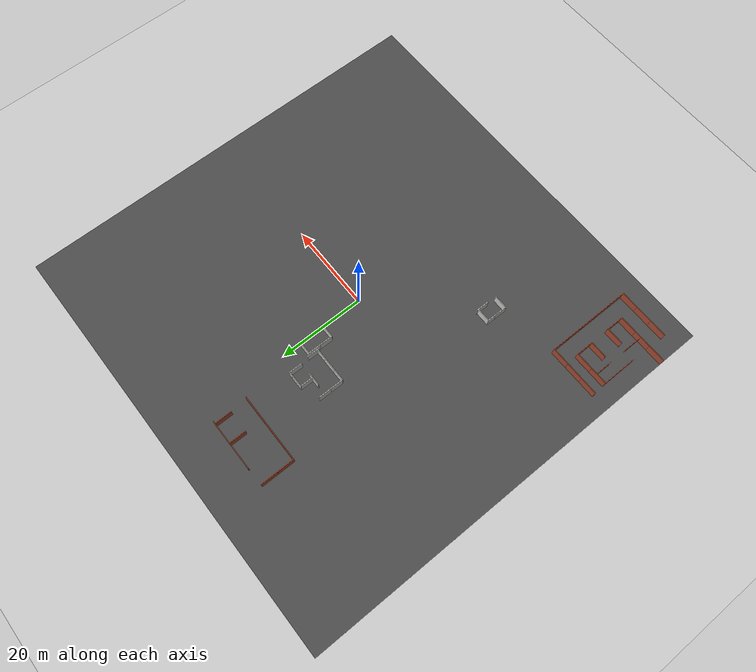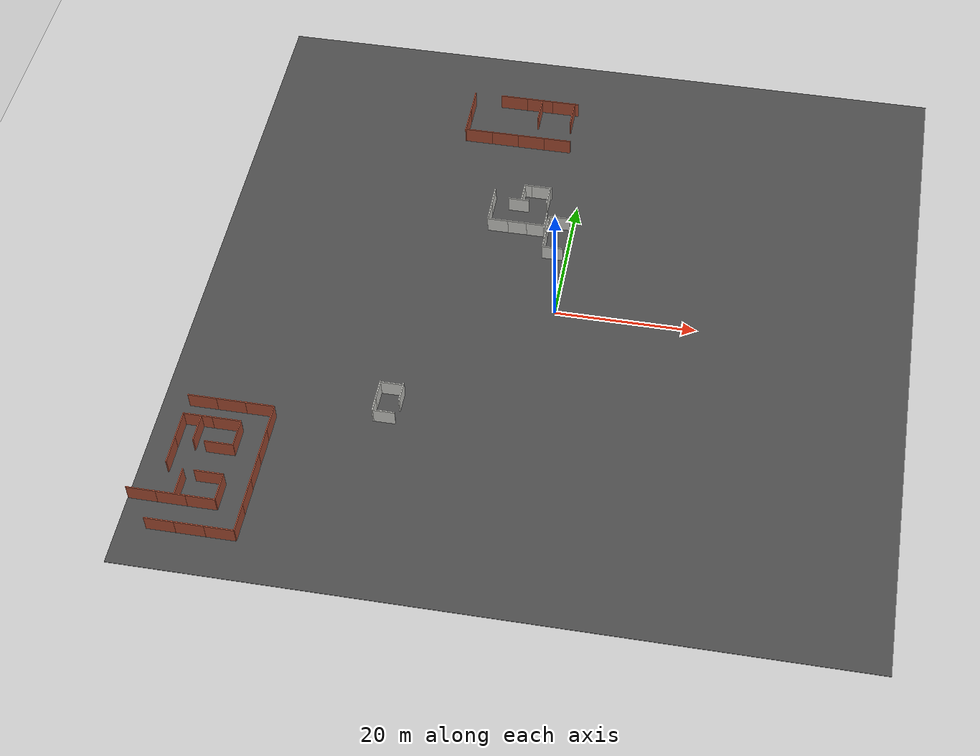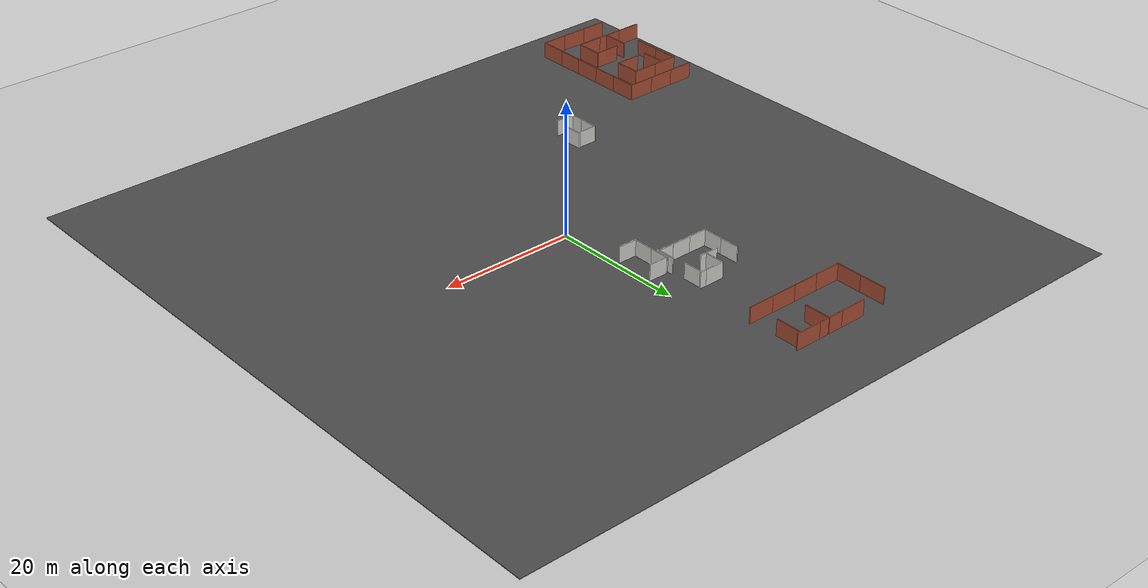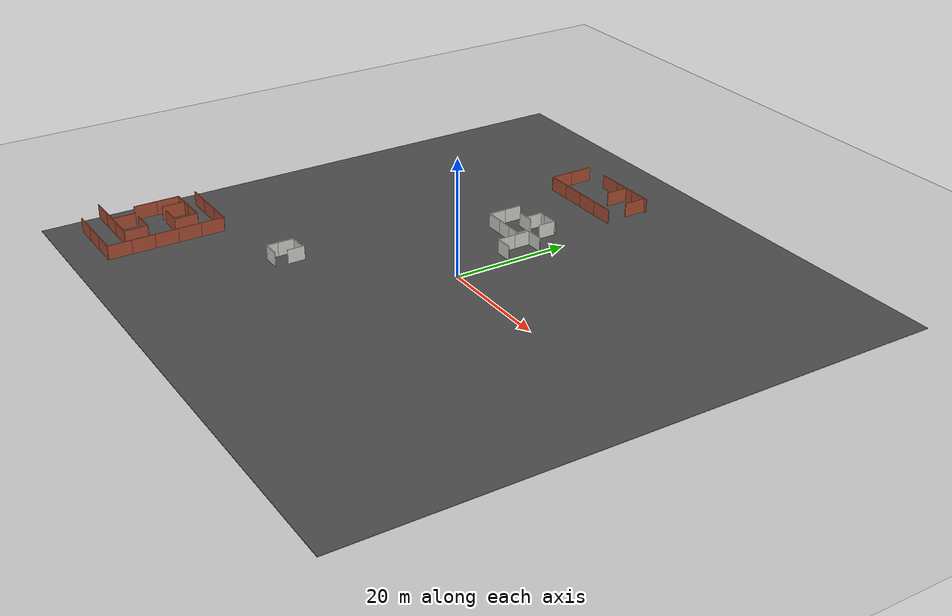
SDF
<sdf version="1.6">
 <world name="default">
  <model name="ground_plane">
   <static>1</static>
   <link name="link">
    <collision name="collision">
     <geometry><plane><normal>0 0 1</normal><size>100 100</size></plane></geometry>
     <surface><friction><ode><mu>100</mu><mu2>50</mu2></ode></friction></surface>
    </collision>
    <visual name="visual">
     <cast_shadows>0</cast_shadows>
     <geometry><plane><normal>0 0 1</normal><size>100 100</size></plane></geometry>
     <material>
      <script><uri>file://media/materials/scripts/gazebo.material</uri><name>Gazebo/Grey</name></script>
     </material>
    </visual>
   </link>
  </model>
  <model name="asphalt_plane">
   <static>1</static>
   <link name="link">
    <collision name="collision"><geometry><box><size>100 100 0.1</size></box></geometry></collision>
    <visual name="visual">
     <cast_shadows>0</cast_shadows>
     <geometry><box><size>100 100 0.1</size></box></geometry>
     <material>
      <script>
       <uri>model://asphalt_plane/materials/scripts</uri>
       <uri>model://asphalt_plane/materials/textures</uri>
       <name>vrc/asphalt</name>
      </script>
     </material>
    </visual>
   </link>
  </model>
  <model name="concrete_wall">
   <pose>-3.44413 14.4314 0 0 -0 0</pose>
   <link name="Wall_0">
    <collision name="Wall_0_Collision">
     <geometry><box><size>3 0.15 2.5</size></box></geometry>
     <pose>0 0 1.25 0 -0 0</pose>
    </collision>
    <visual name="Wall_0_Visual">
     <pose>0 0 1.25 0 -0 0</pose>
     <geometry><box><size>3 0.15 2.5</size></box></geometry>
     <material>
      <script><uri>file://media/materials/scripts/gazebo.material</uri><name>Gazebo/CeilingTiled</name></script>
      <ambient>1 1 1 1</ambient>
     </material>
     <meta><layer>0</layer></meta>
    </visual>
    <pose>0 0 0 0 -0 1.5708</pose>
   </link>
   <static>1</static>
  </model>
  <model name="concrete_wall_0">
   <pose>-3.44364 11.4407 0 0 -0 0</pose>
   <link name="Wall_0">
    <collision name="Wall_0_Collision">
     <geometry><box><size>3 0.15 2.5</size></box></geometry>
     <pose>0 0 1.25 0 -0 0</pose>
    </collision>
    <visual name="Wall_0_Visual">
     <pose>0 0 1.25 0 -0 0</pose>
     <geometry><box><size>3 0.15 2.5</size></box></geometry>
     <material>
      <script><uri>file://media/materials/scripts/gazebo.material</uri><name>Gazebo/CeilingTiled</name></script>
      <ambient>1 1 1 1</ambient>
     </material>
     <meta><layer>0</layer></meta>
    </visual>
    <pose>0 0 0 0 -0 1.5708</pose>
   </link>
   <static>1</static>
  </model>
  <model name="concrete_wall_3">
   <pose>-21.066 -21.2152 0 0 -0 0</pose>
   <link name="Wall_0">
    <collision name="Wall_0_Collision">
     <geometry><box><size>3 0.15 2.5</size></box></geometry>
     <pose>0 0 1.25 0 -0 0</pose>
    </collision>
    <visual name="Wall_0_Visual">
     <pose>0 0 1.25 0 -0 0</pose>
     <geometry><box><size>3 0.15 2.5</size></box></geometry>
     <material>
      <script><uri>file://media/materials/scripts/gazebo.material</uri><name>Gazebo/CeilingTiled</name></script>
      <ambient>1 1 1 1</ambient>
     </material>
     <meta><layer>0</layer></meta>
    </visual>
    <pose>0 0 0 0 -0 1.5708</pose>
   </link>
   <static>1</static>
  </model>
  <model name="concrete_wall_4">
   <pose>-21.0568 -19.2132 0 0 -0 0</pose>
   <link name="Wall_0">
    <collision name="Wall_0_Collision">
     <geometry><box><size>3 0.15 2.5</size></box></geometry>
     <pose>0 0 1.25 0 -0 0</pose>
    </collision>
    <visual name="Wall_0_Visual">
     <pose>0 0 1.25 0 -0 0</pose>
     <geometry><box><size>3 0.15 2.5</size></box></geometry>
     <material>
      <script><uri>file://media/materials/scripts/gazebo.material</uri><name>Gazebo/CeilingTiled</name></script>
      <ambient>1 1 1 1</ambient>
     </material>
     <meta><layer>0</layer></meta>
    </visual>
    <pose>0 0 0 0 -0 1.5708</pose>
   </link>
   <static>1</static>
  </model>
  <model name="concrete_wall_5">
   <pose>-17.8818 -19.0275 0 0 -0 0</pose>
   <link name="Wall_0">
    <collision name="Wall_0_Collision">
     <geometry><box><size>3 0.15 2.5</size></box></geometry>
     <pose>0 0 1.25 0 -0 0</pose>
    </collision>
    <visual name="Wall_0_Visual">
     <pose>0 0 1.25 0 -0 0</pose>
     <geometry><box><size>3 0.15 2.5</size></box></geometry>
     <material>
      <script><uri>file://media/materials/scripts/gazebo.material</uri><name>Gazebo/CeilingTiled</name></script>
      <ambient>1 1 1 1</ambient>
     </material>
     <meta><layer>0</layer></meta>
    </visual>
    <pose>0 0 0 0 -0 1.5708</pose>
   </link>
   <static>1</static>
  </model>
  <model name="concrete_wall_6_clone">
   <pose>-19.5085 -22.6271 0 0 -0 1.57079</pose>
   <link name="Wall_0">
    <collision name="Wall_0_Collision">
     <geometry><box><size>3 0.15 2.5</size></box></geometry>
     <pose>0 0 1.25 0 -0 0</pose>
    </collision>
    <visual name="Wall_0_Visual">
     <pose>0 0 1.25 0 -0 0</pose>
     <geometry><box><size>3 0.15 2.5</size></box></geometry>
     <material>
      <script><uri>file://media/materials/scripts/gazebo.material</uri><name>Gazebo/CeilingTiled</name></script>
      <ambient>1 1 1 1</ambient>
     </material>
     <meta><layer>0</layer></meta>
    </visual>
    <pose>0 0 0 0 -0 1.5708</pose>
   </link>
   <static>1</static>
  </model>
  <model name="concrete_wall_6_clone_0">
   <pose>-19.4814 -17.8466 0 0 -0 1.57079</pose>
   <link name="Wall_0">
    <collision name="Wall_0_Collision">
     <geometry><box><size>3 0.15 2.5</size></box></geometry>
     <pose>0 0 1.25 0 -0 0</pose>
    </collision>
    <visual name="Wall_0_Visual">
     <pose>0 0 1.25 0 -0 0</pose>
     <geometry><box><size>3 0.15 2.5</size></box></geometry>
     <material>
      <script><uri>file://media/materials/scripts/gazebo.material</uri><name>Gazebo/CeilingTiled</name></script>
      <ambient>1 1 1 1</ambient>
     </material>
     <meta><layer>0</layer></meta>
    </visual>
    <pose>0 0 0 0 -0 1.5708</pose>
   </link>
   <static>1</static>
  </model>
  <model name="concrete_wall_6_clone_6">
   <pose>-1.99874 9.88847 0 0 -0 1.57079</pose>
   <link name="Wall_0">
    <collision name="Wall_0_Collision">
     <geometry><box><size>3 0.15 2.5</size></box></geometry>
     <pose>0 0 1.25 0 -0 0</pose>
    </collision>
    <visual name="Wall_0_Visual">
     <pose>0 0 1.25 0 -0 0</pose>
     <geometry><box><size>3 0.15 2.5</size></box></geometry>
     <material>
      <script><uri>file://media/materials/scripts/gazebo.material</uri><name>Gazebo/CeilingTiled</name></script>
      <ambient>1 1 1 1</ambient>
     </material>
     <meta><layer>0</layer></meta>
    </visual>
    <pose>0 0 0 0 -0 1.5708</pose>
   </link>
   <static>1</static>
  </model>
  <model name="concrete_wall_6_clone_7">
   <pose>-1.94158 15.788 0 0 -0 1.57079</pose>
   <link name="Wall_0">
    <collision name="Wall_0_Collision">
     <geometry><box><size>3 0.15 2.5</size></box></geometry>
     <pose>0 0 1.25 0 -0 0</pose>
    </collision>
    <visual name="Wall_0_Visual">
     <pose>0 0 1.25 0 -0 0</pose>
     <geometry><box><size>3 0.15 2.5</size></box></geometry>
     <material>
      <script><uri>file://media/materials/scripts/gazebo.material</uri><name>Gazebo/CeilingTiled</name></script>
      <ambient>1 1 1 1</ambient>
     </material>
     <meta><layer>0</layer></meta>
    </visual>
    <pose>0 0 0 0 -0 1.5708</pose>
   </link>
   <static>1</static>
  </model>
  <model name="concrete_wall_6_clone_9">
   <pose>-10.7665 13.9394 0 0 -0 1.57079</pose>
   <link name="Wall_0">
    <collision name="Wall_0_Collision">
     <geometry><box><size>3 0.15 2.5</size></box></geometry>
     <pose>0 0 1.25 0 -0 0</pose>
    </collision>
    <visual name="Wall_0_Visual">
     <pose>0 0 1.25 0 -0 0</pose>
     <geometry><box><size>3 0.15 2.5</size></box></geometry>
     <material>
      <script><uri>file://media/materials/scripts/gazebo.material</uri><name>Gazebo/CeilingTiled</name></script>
      <ambient>1 1 1 1</ambient>
     </material>
     <meta><layer>0</layer></meta>
    </visual>
    <pose>0 0 0 0 -0 1.5708</pose>
   </link>
   <static>1</static>
  </model>
  <model name="concrete_wall_6_clone_10">
   <pose>-7.79777 13.9437 0 0 -0 1.57079</pose>
   <link name="Wall_0">
    <collision name="Wall_0_Collision">
     <geometry><box><size>3 0.15 2.5</size></box></geometry>
     <pose>0 0 1.25 0 -0 0</pose>
    </collision>
    <visual name="Wall_0_Visual">
     <pose>0 0 1.25 0 -0 0</pose>
     <geometry><box><size>3 0.15 2.5</size></box></geometry>
     <material>
      <script><uri>file://media/materials/scripts/gazebo.material</uri><name>Gazebo/CeilingTiled</name></script>
      <ambient>1 1 1 1</ambient>
     </material>
     <meta><layer>0</layer></meta>
    </visual>
    <pose>0 0 0 0 -0 1.5708</pose>
   </link>
   <static>1</static>
  </model>
  <model name="concrete_wall_6_clone_11">
   <pose>-5.01284 13.934 0 0 -0 1.57079</pose>
   <link name="Wall_0">
    <collision name="Wall_0_Collision">
     <geometry><box><size>3 0.15 2.5</size></box></geometry>
     <pose>0 0 1.25 0 -0 0</pose>
    </collision>
    <visual name="Wall_0_Visual">
     <pose>0 0 1.25 0 -0 0</pose>
     <geometry><box><size>3 0.15 2.5</size></box></geometry>
     <material>
      <script><uri>file://media/materials/scripts/gazebo.material</uri><name>Gazebo/CeilingTiled</name></script>
      <ambient>1 1 1 1</ambient>
     </material>
     <meta><layer>0</layer></meta>
    </visual>
    <pose>0 0 0 0 -0 1.5708</pose>
   </link>
   <static>1</static>
  </model>
  <model name="concrete_wall_6_clone_12">
   <pose>-6.55197 21.3742 0 0 -0 1.57079</pose>
   <link name="Wall_0">
    <collision name="Wall_0_Collision">
     <geometry><box><size>3 0.15 2.5</size></box></geometry>
     <pose>0 0 1.25 0 -0 0</pose>
    </collision>
    <visual name="Wall_0_Visual">
     <pose>0 0 1.25 0 -0 0</pose>
     <geometry><box><size>3 0.15 2.5</size></box></geometry>
     <material>
      <script><uri>file://media/materials/scripts/gazebo.material</uri><name>Gazebo/CeilingTiled</name></script>
      <ambient>1 1 1 1</ambient>
     </material>
     <meta><layer>0</layer></meta>
    </visual>
    <pose>0 0 0 0 -0 1.5708</pose>
   </link>
   <static>1</static>
  </model>
  <model name="concrete_wall_6_clone_13">
   <pose>-5.53068 21.3667 0 0 -0 1.57079</pose>
   <link name="Wall_0">
    <collision name="Wall_0_Collision">
     <geometry><box><size>3 0.15 2.5</size></box></geometry>
     <pose>0 0 1.25 0 -0 0</pose>
    </collision>
    <visual name="Wall_0_Visual">
     <pose>0 0 1.25 0 -0 0</pose>
     <geometry><box><size>3 0.15 2.5</size></box></geometry>
     <material>
      <script><uri>file://media/materials/scripts/gazebo.material</uri><name>Gazebo/CeilingTiled</name></script>
      <ambient>1 1 1 1</ambient>
     </material>
     <meta><layer>0</layer></meta>
    </visual>
    <pose>0 0 0 0 -0 1.5708</pose>
   </link>
   <static>1</static>
  </model>
  <model name="concrete_wall_10">
   <pose>-12.1983 15.5037 0 0 -0 0</pose>
   <link name="Wall_0">
    <collision name="Wall_0_Collision">
     <geometry><box><size>3 0.15 2.5</size></box></geometry>
     <pose>0 0 1.25 0 -0 0</pose>
    </collision>
    <visual name="Wall_0_Visual">
     <pose>0 0 1.25 0 -0 0</pose>
     <geometry><box><size>3 0.15 2.5</size></box></geometry>
     <material>
      <script><uri>file://media/materials/scripts/gazebo.material</uri><name>Gazebo/CeilingTiled</name></script>
      <ambient>1 1 1 1</ambient>
     </material>
     <meta><layer>0</layer></meta>
    </visual>
    <pose>0 0 0 0 -0 1.5708</pose>
   </link>
   <static>1</static>
  </model>
  <model name="concrete_wall_11">
   <pose>-12.197 18.4288 0 0 -0 0</pose>
   <link name="Wall_0">
    <collision name="Wall_0_Collision">
     <geometry><box><size>3 0.15 2.5</size></box></geometry>
     <pose>0 0 1.25 0 -0 0</pose>
    </collision>
    <visual name="Wall_0_Visual">
     <pose>0 0 1.25 0 -0 0</pose>
     <geometry><box><size>3 0.15 2.5</size></box></geometry>
     <material>
      <script><uri>file://media/materials/scripts/gazebo.material</uri><name>Gazebo/CeilingTiled</name></script>
      <ambient>1 1 1 1</ambient>
     </material>
     <meta><layer>0</layer></meta>
    </visual>
    <pose>0 0 0 0 -0 1.5708</pose>
   </link>
   <static>1</static>
  </model>
  <model name="concrete_wall_12">
   <pose>-4.28143 19.8004 0 0 -0 0</pose>
   <link name="Wall_0">
    <collision name="Wall_0_Collision">
     <geometry><box><size>3 0.15 2.5</size></box></geometry>
     <pose>0 0 1.25 0 -0 0</pose>
    </collision>
    <visual name="Wall_0_Visual">
     <pose>0 0 1.25 0 -0 0</pose>
     <geometry><box><size>3 0.15 2.5</size></box></geometry>
     <material>
      <script><uri>file://media/materials/scripts/gazebo.material</uri><name>Gazebo/CeilingTiled</name></script>
      <ambient>1 1 1 1</ambient>
     </material>
     <meta><layer>0</layer></meta>
    </visual>
    <pose>0 0 0 0 -0 1.5708</pose>
   </link>
   <static>1</static>
  </model>
  <model name="concrete_wall_13">
   <pose>-3.86438 15.0004 0 0 -0 0</pose>
   <link name="Wall_0">
    <collision name="Wall_0_Collision">
     <geometry><box><size>3 0.15 2.5</size></box></geometry>
     <pose>0 0 1.25 0 -0 0</pose>
    </collision>
    <visual name="Wall_0_Visual">
     <pose>0 0 1.25 0 -0 0</pose>
     <geometry><box><size>3 0.15 2.5</size></box></geometry>
     <material>
      <script><uri>file://media/materials/scripts/gazebo.material</uri><name>Gazebo/CeilingTiled</name></script>
      <ambient>1 1 1 1</ambient>
     </material>
     <meta><layer>0</layer></meta>
    </visual>
    <pose>0 0 0 0 -0 1.5708</pose>
   </link>
   <static>1</static>
  </model>
  <model name="concrete_wall_14">
   <pose>-8.00651 19.8559 0 0 -0 0</pose>
   <link name="Wall_0">
    <collision name="Wall_0_Collision">
     <geometry><box><size>3 0.15 2.5</size></box></geometry>
     <pose>0 0 1.25 0 -0 0</pose>
    </collision>
    <visual name="Wall_0_Visual">
     <pose>0 0 1.25 0 -0 0</pose>
     <geometry><box><size>3 0.15 2.5</size></box></geometry>
     <material>
      <script><uri>file://media/materials/scripts/gazebo.material</uri><name>Gazebo/CeilingTiled</name></script>
      <ambient>1 1 1 1</ambient>
     </material>
     <meta><layer>0</layer></meta>
    </visual>
    <pose>0 0 0 0 -0 1.5708</pose>
   </link>
   <static>1</static>
  </model>
  <model name="concrete_wall_6_clone_14">
   <pose>-8.44061 18.3913 0 0 -0 1.57079</pose>
   <link name="Wall_0">
    <collision name="Wall_0_Collision">
     <geometry><box><size>3 0.15 2.5</size></box></geometry>
     <pose>0 0 1.25 0 -0 0</pose>
    </collision>
    <visual name="Wall_0_Visual">
     <pose>0 0 1.25 0 -0 0</pose>
     <geometry><box><size>3 0.15 2.5</size></box></geometry>
     <material>
      <script><uri>file://media/materials/scripts/gazebo.material</uri><name>Gazebo/CeilingTiled</name></script>
      <ambient>1 1 1 1</ambient>
     </material>
     <meta><layer>0</layer></meta>
    </visual>
    <pose>0 0 0 0 -0 1.5708</pose>
   </link>
   <static>1</static>
  </model>
  <model name="brick_wall_2_clone">
   <pose>-4.86366 31.3819 0 0 -0 0</pose>
   <link name="Wall_0">
    <collision name="Wall_0_Collision">
     <geometry><box><size>4 0.15 2.5</size></box></geometry>
     <pose>0 0 1.25 0 -0 0</pose>
    </collision>
    <visual name="Wall_0_Visual">
     <pose>0 0 1.25 0 -0 0</pose>
     <geometry><box><size>4 0.15 2.5</size></box></geometry>
     <material>
      <script><uri>file://media/materials/scripts/gazebo.material</uri><name>Gazebo/Bricks</name></script>
      <ambient>1 1 1 1</ambient>
     </material>
     <meta><layer>0</layer></meta>
    </visual>
   </link>
   <static>1</static>
  </model>
  <model name="brick_wall_2_clone_0">
   <pose>-8.86366 31.3819 0 0 -0 0</pose>
   <link name="Wall_0">
    <collision name="Wall_0_Collision">
     <geometry><box><size>4 0.15 2.5</size></box></geometry>
     <pose>0 0 1.25 0 -0 0</pose>
    </collision>
    <visual name="Wall_0_Visual">
     <pose>0 0 1.25 0 -0 0</pose>
     <geometry><box><size>4 0.15 2.5</size></box></geometry>
     <material>
      <script><uri>file://media/materials/scripts/gazebo.material</uri><name>Gazebo/Bricks</name></script>
      <ambient>1 1 1 1</ambient>
     </material>
     <meta><layer>0</layer></meta>
    </visual>
   </link>
   <static>1</static>
  </model>
  <model name="brick_wall_2_clone_1">
   <pose>-12.8637 31.3819 0 0 -0 0</pose>
   <link name="Wall_0">
    <collision name="Wall_0_Collision">
     <geometry><box><size>4 0.15 2.5</size></box></geometry>
     <pose>0 0 1.25 0 -0 0</pose>
    </collision>
    <visual name="Wall_0_Visual">
     <pose>0 0 1.25 0 -0 0</pose>
     <geometry><box><size>4 0.15 2.5</size></box></geometry>
     <material>
      <script><uri>file://media/materials/scripts/gazebo.material</uri><name>Gazebo/Bricks</name></script>
      <ambient>1 1 1 1</ambient>
     </material>
     <meta><layer>0</layer></meta>
    </visual>
   </link>
   <static>1</static>
  </model>
  <model name="brick_wall_2_clone_2">
   <pose>-16.8637 31.3819 0 0 -0 0</pose>
   <link name="Wall_0">
    <collision name="Wall_0_Collision">
     <geometry><box><size>4 0.15 2.5</size></box></geometry>
     <pose>0 0 1.25 0 -0 0</pose>
    </collision>
    <visual name="Wall_0_Visual">
     <pose>0 0 1.25 0 -0 0</pose>
     <geometry><box><size>4 0.15 2.5</size></box></geometry>
     <material>
      <script><uri>file://media/materials/scripts/gazebo.material</uri><name>Gazebo/Bricks</name></script>
      <ambient>1 1 1 1</ambient>
     </material>
     <meta><layer>0</layer></meta>
    </visual>
   </link>
   <static>1</static>
  </model>
  <model name="brick_wall_2_clone_4">
   <pose>-4.86366 39.3819 0 0 -0 0</pose>
   <link name="Wall_0">
    <collision name="Wall_0_Collision">
     <geometry><box><size>4 0.15 2.5</size></box></geometry>
     <pose>0 0 1.25 0 -0 0</pose>
    </collision>
    <visual name="Wall_0_Visual">
     <pose>0 0 1.25 0 -0 0</pose>
     <geometry><box><size>4 0.15 2.5</size></box></geometry>
     <material>
      <script><uri>file://media/materials/scripts/gazebo.material</uri><name>Gazebo/Bricks</name></script>
      <ambient>1 1 1 1</ambient>
     </material>
     <meta><layer>0</layer></meta>
    </visual>
   </link>
   <static>1</static>
  </model>
  <model name="brick_wall_2_clone_5">
   <pose>-8.86366 39.3819 0 0 -0 0</pose>
   <link name="Wall_0">
    <collision name="Wall_0_Collision">
     <geometry><box><size>4 0.15 2.5</size></box></geometry>
     <pose>0 0 1.25 0 -0 0</pose>
    </collision>
    <visual name="Wall_0_Visual">
     <pose>0 0 1.25 0 -0 0</pose>
     <geometry><box><size>4 0.15 2.5</size></box></geometry>
     <material>
      <script><uri>file://media/materials/scripts/gazebo.material</uri><name>Gazebo/Bricks</name></script>
      <ambient>1 1 1 1</ambient>
     </material>
     <meta><layer>0</layer></meta>
    </visual>
   </link>
   <static>1</static>
  </model>
  <model name="brick_wall_2_clone_6">
   <pose>-12.8637 39.3819 0 0 -0 0</pose>
   <link name="Wall_0">
    <collision name="Wall_0_Collision">
     <geometry><box><size>4 0.15 2.5</size></box></geometry>
     <pose>0 0 1.25 0 -0 0</pose>
    </collision>
    <visual name="Wall_0_Visual">
     <pose>0 0 1.25 0 -0 0</pose>
     <geometry><box><size>4 0.15 2.5</size></box></geometry>
     <material>
      <script><uri>file://media/materials/scripts/gazebo.material</uri><name>Gazebo/Bricks</name></script>
      <ambient>1 1 1 1</ambient>
     </material>
     <meta><layer>0</layer></meta>
    </visual>
   </link>
   <static>1</static>
  </model>
  <model name="brick_wall_3_clone_0">
   <pose>-18.914 33.2967 0 0 -0 1.57079</pose>
   <link name="Wall_0">
    <collision name="Wall_0_Collision">
     <geometry><box><size>4 0.15 2.5</size></box></geometry>
     <pose>0 0 1.25 0 -0 0</pose>
    </collision>
    <visual name="Wall_0_Visual">
     <pose>0 0 1.25 0 -0 0</pose>
     <geometry><box><size>4 0.15 2.5</size></box></geometry>
     <material>
      <script><uri>file://media/materials/scripts/gazebo.material</uri><name>Gazebo/Bricks</name></script>
      <ambient>1 1 1 1</ambient>
     </material>
     <meta><layer>0</layer></meta>
    </visual>
   </link>
   <static>1</static>
  </model>
  <model name="brick_wall_3_clone_1">
   <pose>-18.914 37.2967 0 0 -0 1.57079</pose>
   <link name="Wall_0">
    <collision name="Wall_0_Collision">
     <geometry><box><size>4 0.15 2.5</size></box></geometry>
     <pose>0 0 1.25 0 -0 0</pose>
    </collision>
    <visual name="Wall_0_Visual">
     <pose>0 0 1.25 0 -0 0</pose>
     <geometry><box><size>4 0.15 2.5</size></box></geometry>
     <material>
      <script><uri>file://media/materials/scripts/gazebo.material</uri><name>Gazebo/Bricks</name></script>
      <ambient>1 1 1 1</ambient>
     </material>
     <meta><layer>0</layer></meta>
    </visual>
   </link>
   <static>1</static>
  </model>
  <model name="brick_wall_3_clone_2">
   <pose>-3.48128 37.3947 0 0 -0 1.57079</pose>
   <link name="Wall_0">
    <collision name="Wall_0_Collision">
     <geometry><box><size>4 0.15 2.5</size></box></geometry>
     <pose>0 0 1.25 0 -0 0</pose>
    </collision>
    <visual name="Wall_0_Visual">
     <pose>0 0 1.25 0 -0 0</pose>
     <geometry><box><size>4 0.15 2.5</size></box></geometry>
     <material>
      <script><uri>file://media/materials/scripts/gazebo.material</uri><name>Gazebo/Bricks</name></script>
      <ambient>1 1 1 1</ambient>
     </material>
     <meta><layer>0</layer></meta>
    </visual>
   </link>
   <static>1</static>
  </model>
  <model name="brick_wall_3_clone_3">
   <pose>-8.49204 37.4632 0 0 -0 1.57079</pose>
   <link name="Wall_0">
    <collision name="Wall_0_Collision">
     <geometry><box><size>4 0.15 2.5</size></box></geometry>
     <pose>0 0 1.25 0 -0 0</pose>
    </collision>
    <visual name="Wall_0_Visual">
     <pose>0 0 1.25 0 -0 0</pose>
     <geometry><box><size>4 0.15 2.5</size></box></geometry>
     <material>
      <script><uri>file://media/materials/scripts/gazebo.material</uri><name>Gazebo/Bricks</name></script>
      <ambient>1 1 1 1</ambient>
     </material>
     <meta><layer>0</layer></meta>
    </visual>
   </link>
   <static>1</static>
  </model>
  <model name="brick_wall_clone_7">
   <pose>-44.2 -24.2 0 0 -0 0</pose>
   <link name="Wall_0">
    <collision name="Wall_0_Collision">
     <geometry><box><size>4 0.15 2.5</size></box></geometry>
     <pose>0 0 1.25 0 -0 0</pose>
    </collision>
    <visual name="Wall_0_Visual">
     <pose>0 0 1.25 0 -0 0</pose>
     <geometry><box><size>4 0.15 2.5</size></box></geometry>
     <material>
      <script><uri>file://media/materials/scripts/gazebo.material</uri><name>Gazebo/Bricks</name></script>
      <ambient>1 1 1 1</ambient>
     </material>
     <meta><layer>0</layer></meta>
    </visual>
   </link>
   <static>1</static>
  </model>
  <model name="brick_wall_clone_8">
   <pose>-40.2 -24.2 0 0 -0 0</pose>
   <link name="Wall_0">
    <collision name="Wall_0_Collision">
     <geometry><box><size>4 0.15 2.5</size></box></geometry>
     <pose>0 0 1.25 0 -0 0</pose>
    </collision>
    <visual name="Wall_0_Visual">
     <pose>0 0 1.25 0 -0 0</pose>
     <geometry><box><size>4 0.15 2.5</size></box></geometry>
     <material>
      <script><uri>file://media/materials/scripts/gazebo.material</uri><name>Gazebo/Bricks</name></script>
      <ambient>1 1 1 1</ambient>
     </material>
     <meta><layer>0</layer></meta>
    </visual>
   </link>
   <static>1</static>
  </model>
  <model name="brick_wall_clone_9">
   <pose>-36.2 -24.2 0 0 -0 0</pose>
   <link name="Wall_0">
    <collision name="Wall_0_Collision">
     <geometry><box><size>4 0.15 2.5</size></box></geometry>
     <pose>0 0 1.25 0 -0 0</pose>
    </collision>
    <visual name="Wall_0_Visual">
     <pose>0 0 1.25 0 -0 0</pose>
     <geometry><box><size>4 0.15 2.5</size></box></geometry>
     <material>
      <script><uri>file://media/materials/scripts/gazebo.material</uri><name>Gazebo/Bricks</name></script>
      <ambient>1 1 1 1</ambient>
     </material>
     <meta><layer>0</layer></meta>
    </visual>
   </link>
   <static>1</static>
  </model>
  <model name="brick_wall_clone_10">
   <pose>-43.9084 -27.3 0 0 -0 0</pose>
   <link name="Wall_0">
    <collision name="Wall_0_Collision">
     <geometry><box><size>4 0.15 2.5</size></box></geometry>
     <pose>0 0 1.25 0 -0 0</pose>
    </collision>
    <visual name="Wall_0_Visual">
     <pose>0 0 1.25 0 -0 0</pose>
     <geometry><box><size>4 0.15 2.5</size></box></geometry>
     <material>
      <script><uri>file://media/materials/scripts/gazebo.material</uri><name>Gazebo/Bricks</name></script>
      <ambient>1 1 1 1</ambient>
     </material>
     <meta><layer>0</layer></meta>
    </visual>
   </link>
   <static>1</static>
  </model>
  <model name="brick_wall_clone_11">
   <pose>-39.9084 -27.3 0 0 -0 0</pose>
   <link name="Wall_0">
    <collision name="Wall_0_Collision">
     <geometry><box><size>4 0.15 2.5</size></box></geometry>
     <pose>0 0 1.25 0 -0 0</pose>
    </collision>
    <visual name="Wall_0_Visual">
     <pose>0 0 1.25 0 -0 0</pose>
     <geometry><box><size>4 0.15 2.5</size></box></geometry>
     <material>
      <script><uri>file://media/materials/scripts/gazebo.material</uri><name>Gazebo/Bricks</name></script>
      <ambient>1 1 1 1</ambient>
     </material>
     <meta><layer>0</layer></meta>
    </visual>
   </link>
   <static>1</static>
  </model>
  <model name="brick_wall_clone_12">
   <pose>-36.2 -44.2 0 0 -0 0</pose>
   <link name="Wall_0">
    <collision name="Wall_0_Collision">
     <geometry><box><size>4 0.15 2.5</size></box></geometry>
     <pose>0 0 1.25 0 -0 0</pose>
    </collision>
    <visual name="Wall_0_Visual">
     <pose>0 0 1.25 0 -0 0</pose>
     <geometry><box><size>4 0.15 2.5</size></box></geometry>
     <material>
      <script><uri>file://media/materials/scripts/gazebo.material</uri><name>Gazebo/Bricks</name></script>
      <ambient>1 1 1 1</ambient>
     </material>
     <meta><layer>0</layer></meta>
    </visual>
   </link>
   <static>1</static>
  </model>
  <model name="brick_wall_clone_13">
   <pose>-40.2 -44.2 0 0 -0 0</pose>
   <link name="Wall_0">
    <collision name="Wall_0_Collision">
     <geometry><box><size>4 0.15 2.5</size></box></geometry>
     <pose>0 0 1.25 0 -0 0</pose>
    </collision>
    <visual name="Wall_0_Visual">
     <pose>0 0 1.25 0 -0 0</pose>
     <geometry><box><size>4 0.15 2.5</size></box></geometry>
     <material>
      <script><uri>file://media/materials/scripts/gazebo.material</uri><name>Gazebo/Bricks</name></script>
      <ambient>1 1 1 1</ambient>
     </material>
     <meta><layer>0</layer></meta>
    </visual>
   </link>
   <static>1</static>
  </model>
  <model name="brick_wall_clone_14">
   <pose>-44.2 -44.2 0 0 -0 0</pose>
   <link name="Wall_0">
    <collision name="Wall_0_Collision">
     <geometry><box><size>4 0.15 2.5</size></box></geometry>
     <pose>0 0 1.25 0 -0 0</pose>
    </collision>
    <visual name="Wall_0_Visual">
     <pose>0 0 1.25 0 -0 0</pose>
     <geometry><box><size>4 0.15 2.5</size></box></geometry>
     <material>
      <script><uri>file://media/materials/scripts/gazebo.material</uri><name>Gazebo/Bricks</name></script>
      <ambient>1 1 1 1</ambient>
     </material>
     <meta><layer>0</layer></meta>
    </visual>
   </link>
   <static>1</static>
  </model>
  <model name="brick_wall_clone_15">
   <pose>-47.9084 -40 0 0 -0 0</pose>
   <link name="Wall_0">
    <collision name="Wall_0_Collision">
     <geometry><box><size>4 0.15 2.5</size></box></geometry>
     <pose>0 0 1.25 0 -0 0</pose>
    </collision>
    <visual name="Wall_0_Visual">
     <pose>0 0 1.25 0 -0 0</pose>
     <geometry><box><size>4 0.15 2.5</size></box></geometry>
     <material>
      <script><uri>file://media/materials/scripts/gazebo.material</uri><name>Gazebo/Bricks</name></script>
      <ambient>1 1 1 1</ambient>
     </material>
     <meta><layer>0</layer></meta>
    </visual>
   </link>
   <static>1</static>
  </model>
  <model name="brick_wall_clone_16">
   <pose>-43.9084 -40 0 0 -0 0</pose>
   <link name="Wall_0">
    <collision name="Wall_0_Collision">
     <geometry><box><size>4 0.15 2.5</size></box></geometry>
     <pose>0 0 1.25 0 -0 0</pose>
    </collision>
    <visual name="Wall_0_Visual">
     <pose>0 0 1.25 0 -0 0</pose>
     <geometry><box><size>4 0.15 2.5</size></box></geometry>
     <material>
      <script><uri>file://media/materials/scripts/gazebo.material</uri><name>Gazebo/Bricks</name></script>
      <ambient>1 1 1 1</ambient>
     </material>
     <meta><layer>0</layer></meta>
    </visual>
   </link>
   <static>1</static>
  </model>
  <model name="brick_wall_clone_17">
   <pose>-39.9084 -40 0 0 -0 0</pose>
   <link name="Wall_0">
    <collision name="Wall_0_Collision">
     <geometry><box><size>4 0.15 2.5</size></box></geometry>
     <pose>0 0 1.25 0 -0 0</pose>
    </collision>
    <visual name="Wall_0_Visual">
     <pose>0 0 1.25 0 -0 0</pose>
     <geometry><box><size>4 0.15 2.5</size></box></geometry>
     <material>
      <script><uri>file://media/materials/scripts/gazebo.material</uri><name>Gazebo/Bricks</name></script>
      <ambient>1 1 1 1</ambient>
     </material>
     <meta><layer>0</layer></meta>
    </visual>
   </link>
   <static>1</static>
  </model>
  <model name="brick_wall_clone_18">
   <pose>-39.9084 -36 0 0 -0 0</pose>
   <link name="Wall_0">
    <collision name="Wall_0_Collision">
     <geometry><box><size>4 0.15 2.5</size></box></geometry>
     <pose>0 0 1.25 0 -0 0</pose>
    </collision>
    <visual name="Wall_0_Visual">
     <pose>0 0 1.25 0 -0 0</pose>
     <geometry><box><size>4 0.15 2.5</size></box></geometry>
     <material>
      <script><uri>file://media/materials/scripts/gazebo.material</uri><name>Gazebo/Bricks</name></script>
      <ambient>1 1 1 1</ambient>
     </material>
     <meta><layer>0</layer></meta>
    </visual>
   </link>
   <static>1</static>
  </model>
  <model name="brick_wall_clone_19">
   <pose>-39.9084 -31.2445 0 0 -0 0</pose>
   <link name="Wall_0">
    <collision name="Wall_0_Collision">
     <geometry><box><size>4 0.15 2.5</size></box></geometry>
     <pose>0 0 1.25 0 -0 0</pose>
    </collision>
    <visual name="Wall_0_Visual">
     <pose>0 0 1.25 0 -0 0</pose>
     <geometry><box><size>4 0.15 2.5</size></box></geometry>
     <material>
      <script><uri>file://media/materials/scripts/gazebo.material</uri><name>Gazebo/Bricks</name></script>
      <ambient>1 1 1 1</ambient>
     </material>
     <meta><layer>0</layer></meta>
    </visual>
   </link>
   <static>1</static>
  </model>
  <model name="brick_wall_1_clone_4">
   <pose>-34.2 -42.2 0 0 -0 1.57079</pose>
   <link name="Wall_0">
    <collision name="Wall_0_Collision">
     <geometry><box><size>4 0.15 2.5</size></box></geometry>
     <pose>0 0 1.25 0 -0 0</pose>
    </collision>
    <visual name="Wall_0_Visual">
     <pose>0 0 1.25 0 -0 0</pose>
     <geometry><box><size>4 0.15 2.5</size></box></geometry>
     <material>
      <script><uri>file://media/materials/scripts/gazebo.material</uri><name>Gazebo/Bricks</name></script>
      <ambient>1 1 1 1</ambient>
     </material>
     <meta><layer>0</layer></meta>
    </visual>
   </link>
   <static>1</static>
  </model>
  <model name="brick_wall_1_clone_5">
   <pose>-34.2 -38.2 0 0 -0 1.57079</pose>
   <link name="Wall_0">
    <collision name="Wall_0_Collision">
     <geometry><box><size>4 0.15 2.5</size></box></geometry>
     <pose>0 0 1.25 0 -0 0</pose>
    </collision>
    <visual name="Wall_0_Visual">
     <pose>0 0 1.25 0 -0 0</pose>
     <geometry><box><size>4 0.15 2.5</size></box></geometry>
     <material>
      <script><uri>file://media/materials/scripts/gazebo.material</uri><name>Gazebo/Bricks</name></script>
      <ambient>1 1 1 1</ambient>
     </material>
     <meta><layer>0</layer></meta>
    </visual>
   </link>
   <static>1</static>
  </model>
  <model name="brick_wall_1_clone_6">
   <pose>-34.2 -34.2 0 0 -0 1.57079</pose>
   <link name="Wall_0">
    <collision name="Wall_0_Collision">
     <geometry><box><size>4 0.15 2.5</size></box></geometry>
     <pose>0 0 1.25 0 -0 0</pose>
    </collision>
    <visual name="Wall_0_Visual">
     <pose>0 0 1.25 0 -0 0</pose>
     <geometry><box><size>4 0.15 2.5</size></box></geometry>
     <material>
      <script><uri>file://media/materials/scripts/gazebo.material</uri><name>Gazebo/Bricks</name></script>
      <ambient>1 1 1 1</ambient>
     </material>
     <meta><layer>0</layer></meta>
    </visual>
   </link>
   <static>1</static>
  </model>
  <model name="brick_wall_1_clone_7">
   <pose>-34.2 -30.2 0 0 -0 1.57079</pose>
   <link name="Wall_0">
    <collision name="Wall_0_Collision">
     <geometry><box><size>4 0.15 2.5</size></box></geometry>
     <pose>0 0 1.25 0 -0 0</pose>
    </collision>
    <visual name="Wall_0_Visual">
     <pose>0 0 1.25 0 -0 0</pose>
     <geometry><box><size>4 0.15 2.5</size></box></geometry>
     <material>
      <script><uri>file://media/materials/scripts/gazebo.material</uri><name>Gazebo/Bricks</name></script>
      <ambient>1 1 1 1</ambient>
     </material>
     <meta><layer>0</layer></meta>
    </visual>
   </link>
   <static>1</static>
  </model>
  <model name="brick_wall_1_clone_8">
   <pose>-34.2 -26.2 0 0 -0 1.57079</pose>
   <link name="Wall_0">
    <collision name="Wall_0_Collision">
     <geometry><box><size>4 0.15 2.5</size></box></geometry>
     <pose>0 0 1.25 0 -0 0</pose>
    </collision>
    <visual name="Wall_0_Visual">
     <pose>0 0 1.25 0 -0 0</pose>
     <geometry><box><size>4 0.15 2.5</size></box></geometry>
     <material>
      <script><uri>file://media/materials/scripts/gazebo.material</uri><name>Gazebo/Bricks</name></script>
      <ambient>1 1 1 1</ambient>
     </material>
     <meta><layer>0</layer></meta>
    </visual>
   </link>
   <static>1</static>
  </model>
  <model name="brick_wall_1_clone_9">
   <pose>-37.9084 -38 0 0 -0 1.57079</pose>
   <link name="Wall_0">
    <collision name="Wall_0_Collision">
     <geometry><box><size>4 0.15 2.5</size></box></geometry>
     <pose>0 0 1.25 0 -0 0</pose>
    </collision>
    <visual name="Wall_0_Visual">
     <pose>0 0 1.25 0 -0 0</pose>
     <geometry><box><size>4 0.15 2.5</size></box></geometry>
     <material>
      <script><uri>file://media/materials/scripts/gazebo.material</uri><name>Gazebo/Bricks</name></script>
      <ambient>1 1 1 1</ambient>
     </material>
     <meta><layer>0</layer></meta>
    </visual>
   </link>
   <static>1</static>
  </model>
  <model name="brick_wall_1_clone_10">
   <pose>-37.9551 -29.3 0 0 -0 1.57079</pose>
   <link name="Wall_0">
    <collision name="Wall_0_Collision">
     <geometry><box><size>4 0.15 2.5</size></box></geometry>
     <pose>0 0 1.25 0 -0 0</pose>
    </collision>
    <visual name="Wall_0_Visual">
     <pose>0 0 1.25 0 -0 0</pose>
     <geometry><box><size>4 0.15 2.5</size></box></geometry>
     <material>
      <script><uri>file://media/materials/scripts/gazebo.material</uri><name>Gazebo/Bricks</name></script>
      <ambient>1 1 1 1</ambient>
     </material>
     <meta><layer>0</layer></meta>
    </visual>
   </link>
   <static>1</static>
  </model>
  <model name="brick_wall_1_clone_11">
   <pose>-45.8877 -29.3 0 0 -0 1.57079</pose>
   <link name="Wall_0">
    <collision name="Wall_0_Collision">
     <geometry><box><size>4 0.15 2.5</size></box></geometry>
     <pose>0 0 1.25 0 -0 0</pose>
    </collision>
    <visual name="Wall_0_Visual">
     <pose>0 0 1.25 0 -0 0</pose>
     <geometry><box><size>4 0.15 2.5</size></box></geometry>
     <material>
      <script><uri>file://media/materials/scripts/gazebo.material</uri><name>Gazebo/Bricks</name></script>
      <ambient>1 1 1 1</ambient>
     </material>
     <meta><layer>0</layer></meta>
    </visual>
   </link>
   <static>1</static>
  </model>
  <model name="brick_wall_1_clone_12">
   <pose>-43.4 -29.3 0 0 -0 1.57079</pose>
   <link name="Wall_0">
    <collision name="Wall_0_Collision">
     <geometry><box><size>4 0.15 2.5</size></box></geometry>
     <pose>0 0 1.25 0 -0 0</pose>
    </collision>
    <visual name="Wall_0_Visual">
     <pose>0 0 1.25 0 -0 0</pose>
     <geometry><box><size>4 0.15 2.5</size></box></geometry>
     <material>
      <script><uri>file://media/materials/scripts/gazebo.material</uri><name>Gazebo/Bricks</name></script>
      <ambient>1 1 1 1</ambient>
     </material>
     <meta><layer>0</layer></meta>
    </visual>
   </link>
   <static>1</static>
  </model>
  <model name="brick_wall_1_clone_13">
   <pose>-43.4 -38 0 0 -0 1.57079</pose>
   <link name="Wall_0">
    <collision name="Wall_0_Collision">
     <geometry><box><size>4 0.15 2.5</size></box></geometry>
     <pose>0 0 1.25 0 -0 0</pose>
    </collision>
    <visual name="Wall_0_Visual">
     <pose>0 0 1.25 0 -0 0</pose>
     <geometry><box><size>4 0.15 2.5</size></box></geometry>
     <material>
      <script><uri>file://media/materials/scripts/gazebo.material</uri><name>Gazebo/Bricks</name></script>
      <ambient>1 1 1 1</ambient>
     </material>
     <meta><layer>0</layer></meta>
    </visual>
   </link>
   <static>1</static>
  </model>
  <model name="brick_wall_1_clone_14">
   <pose>-45.8877 -33.3 0 0 -0 1.57079</pose>
   <link name="Wall_0">
    <collision name="Wall_0_Collision">
     <geometry><box><size>4 0.15 2.5</size></box></geometry>
     <pose>0 0 1.25 0 -0 0</pose>
    </collision>
    <visual name="Wall_0_Visual">
     <pose>0 0 1.25 0 -0 0</pose>
     <geometry><box><size>4 0.15 2.5</size></box></geometry>
     <material>
      <script><uri>file://media/materials/scripts/gazebo.material</uri><name>Gazebo/Bricks</name></script>
      <ambient>1 1 1 1</ambient>
     </material>
     <meta><layer>0</layer></meta>
    </visual>
   </link>
   <static>1</static>
  </model>
 </world>
</sdf>
